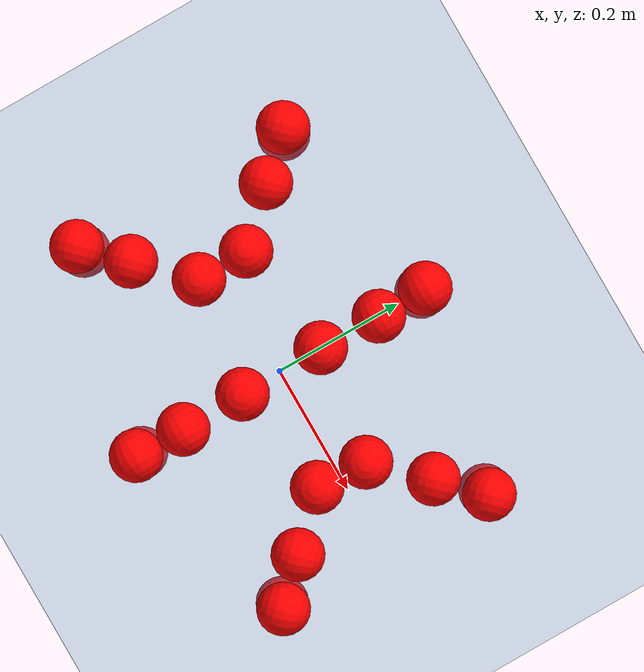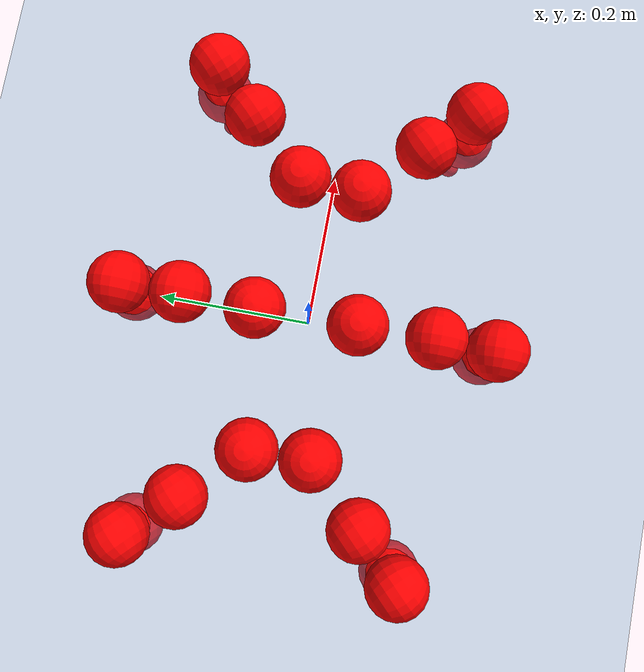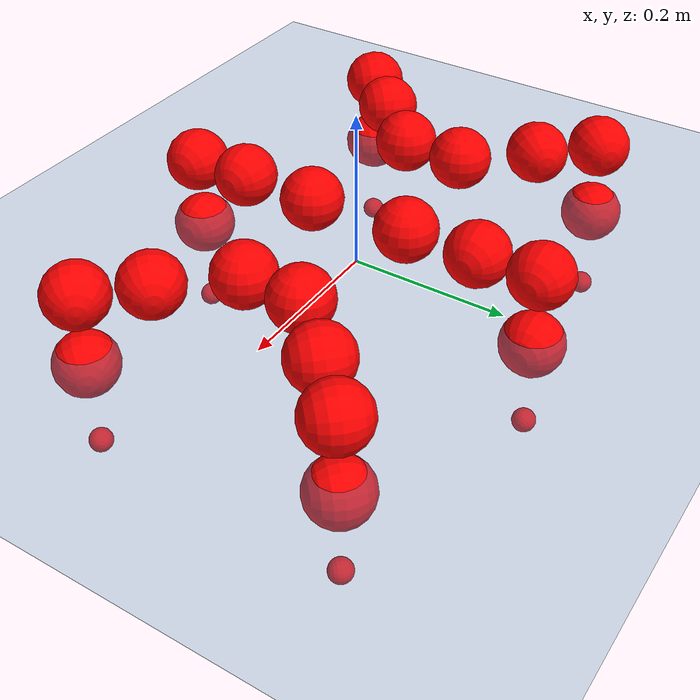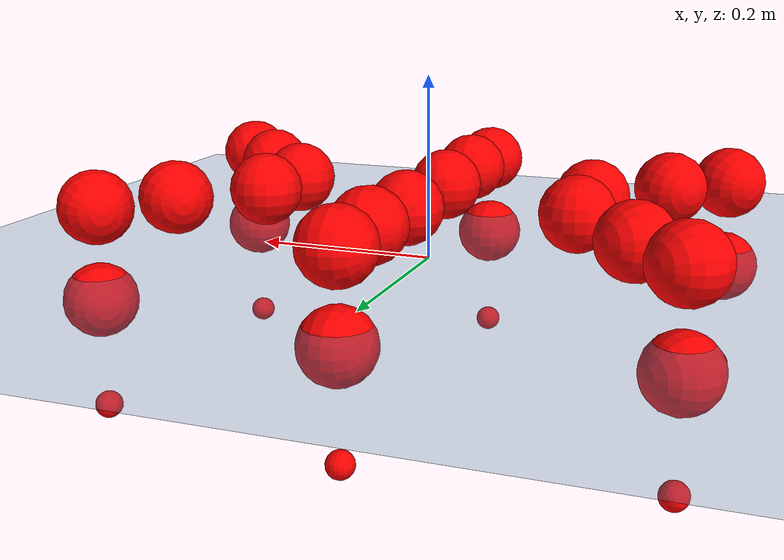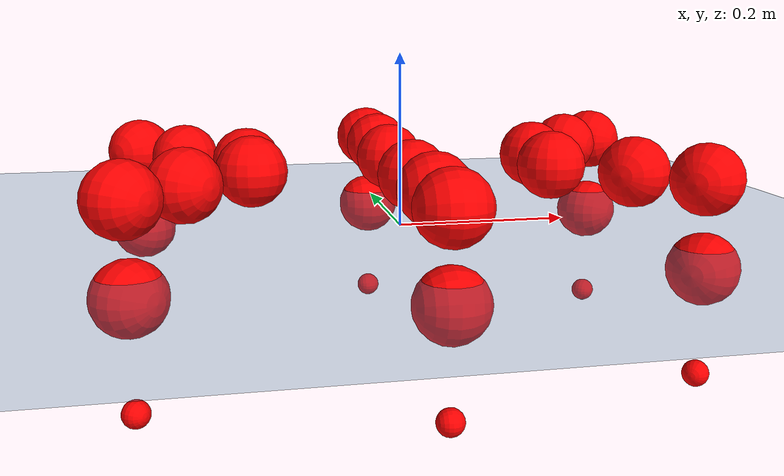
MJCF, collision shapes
<mujoco model="Golem">
  <compiler angle="radian" assetdir="assets" balanceinertia="true" inertiafromgeom="false"/>

  <option timestep="0.005" density="1.2" viscosity="2e-05"/>

  <size nkey="1"/>

  <visual>
    <quality shadowsize="8192"/>
    <map shadowclip="0.5"/>
  </visual>

  <default>
    <default class="/">
      <joint armature="0.01" damping="0.01" frictionloss="0.01"/>
      <geom contype="0" conaffinity="0" group="1" solref="-1000 -80"/>
      <site size="0.01 0.005 0.005" group="5"/>
      <general forcelimited="true" biastype="affine" gainprm="25" biasprm="0 -25 -0.5"/>
      <default class="visual">
        <geom type="mesh" group="2"/>
      </default>
      <default class="collision">
        <geom group="3"/>
      </default>
      <default class="foot">
        <geom size="0.01 0 0" condim="6" group="4" priority="1" solimp="0.015 1 0.01"/>
      </default>
      <default class="reward_collision_sphere">
        <geom group="5" rgba="1 0 0 1"/>
      </default>
    </default>
  </default>

  <asset>
    <texture type="skybox" colorspace="auto" name="//unnamed_texture_0" builtin="gradient" rgb1="0.95 0.95 0.95" rgb2="0.95 0.95 0.95" width="100" height="600"/>
    <texture type="2d" colorspace="auto" name="texplane" builtin="checker" rgb1="0.345 0.575 0.748" rgb2="0.345 0.575 0.748" markrgb="1 1 1" width="512" height="512"/>
    <material name="MatPlane" class="/" texture="texplane" texuniform="true" texrepeat="2 2" specular="0.9"/>
    <mesh name="body" class="/" file="body.stl" scale="0.001 0.001 0.001"/>
    <mesh name="coxa" class="/" file="coxa.stl" scale="0.001 0.001 0.001"/>
    <mesh name="femur" class="/" file="femur.stl" scale="0.001 0.001 0.001"/>
    <mesh name="tibia" class="/" file="tibia.stl" scale="0.001 0.001 0.001"/>
    <mesh name="tarsus" class="/" file="tarsus.stl" scale="0.001 0.001 0.001"/>
  </asset>

  <worldbody>
    <geom name="floor" class="/" size="100 100 0.125" type="plane" group="0" material="MatPlane"/>
    <light name="toplight_shadow" class="/" pos="0 0 5" dir="0.0990148 0.0990148 -0.990148" type="directional" ambient="0.04 0.04 0.04" diffuse="0.55 0.55 0.55" specular="0.12 0.12 0.12"/>
    <light name="toplight_fill" class="/" pos="0 0 5" dir="0.0990148 0.0990148 -0.990148" type="directional" castshadow="false" ambient="0.04 0.04 0.04" diffuse="0.3 0.3 0.3" specular="0.08 0.08 0.08"/>
    <body name="trunk" pos="0.000276767 0.00273648 0.00173209" quat="1 8.93115e-05 0.000241973 -9.75002e-05">
      <inertial pos="-0.000271927 0.000507844 -0.00471988" quat="0.999998 -0.000227874 0.0010873 0.00180613" mass="3.77148" diaginertia="0.0168067 0.00249245 0.0157875"/>
      <joint name="//unnamed_joint_0" type="free"/>
      <geom name="//unnamed_geom_1" class="/" pos="0 0 0.070119" quat="1 0 0 0" type="mesh" rgba="0.9 0.9 0.9 1" mesh="body"/>
      <site name="imu" class="/" pos="0.148073 -0.0100908 0.113408" size="0.00984785"/>
      <camera name="track" class="/" pos="0 -1.50324 0" quat="0.707107 0.707107 0 0" mode="trackcom"/>
      <camera name="ego_camera" class="/" pos="0.143926 0 0.109561" quat="-0.5 -0.5 0.5 0.5"/>
      <body name="coxa_RR" pos="-0.196353 -0.060402 0.0733152" quat="0.38267 0.000407244 -0.00119152 -0.923884">
        <inertial pos="0.000230535 -0.00262722 0.00306605" quat="0.99998 0.00561224 0.00303204 -5.61377e-05" mass="0.195837" diaginertia="0.0164203 0.00237595 0.015772"/>
        <joint name="coxa_joint_RR" class="/" pos="0 0 0" axis="0.000175718 -0.00408143 -0.999992" range="-3.0894 3.13811" armature="0.00993958" damping="0.00729787" frictionloss="0.0103553"/>
        <geom name="//unnamed_geom_2" class="/" type="mesh" rgba="0.2 0.2 0.2 1" mesh="coxa"/>
        <geom name="//unnamed_geom_3" class="reward_collision_sphere" size="0.0393914" pos="-0.0332137 0 0"/>
        <body name="femur_RR" pos="0.0681793 0.000333111 -0.000341352" quat="0.500541 -0.500661 0.499382 0.499415">
          <inertial pos="-0.00261791 -0.00084208 0.000769868" quat="1 0.000579242 0.000107998 -0.00051743" mass="0.194986" diaginertia="0.0170081 0.00246881 0.0162083"/>
          <joint name="femur_joint_RR" class="/" pos="0 0 0" axis="0.000178082 0.000447815 -1" stiffness="0.00631984" range="-3.18114 3.17149" armature="0.00868754" damping="0.00277876" frictionloss="0.00973834"/>
          <geom name="//unnamed_geom_4" class="/" type="mesh" rgba="0.9 0.9 0.9 1" mesh="femur"/>
          <geom name="//unnamed_geom_5" class="reward_collision_sphere" size="0.0393914"/>
          <body name="tibia_RR" pos="0.00145919 -0.0808586 -0.000485293" quat="7.91345e-06 1 3.08024e-05 3.28616e-05">
            <inertial pos="0.000950934 0.00107678 -0.000884924" quat="0.999973 0.00145478 -0.00376815 -0.00613683" mass="0.188112" diaginertia="0.0167937 0.00251588 0.0165631"/>
            <joint name="tibia_joint_RR" class="/" pos="0 0 0" axis="-0.00809453 0.00876256 0.999929" range="-3.15956 3.09132" armature="0.0104214" damping="0.0189035" frictionloss="0.0093281"/>
            <geom name="//unnamed_geom_6" class="/" type="mesh" rgba="0.2 0.2 0.2 1" mesh="tibia"/>
            <geom name="//unnamed_geom_7" class="reward_collision_sphere" size="0.0393914"/>
            <body name="tarsus_RR" pos="0.0970354 -0.0022544 -0.00084375" quat="1 -5.7595e-05 -0.000193682 -0.000361452">
              <inertial pos="0.0702809 0.00282558 -0.00272733" quat="0.496509 0.50056 0.499237 0.503667" mass="0.200102" diaginertia="0.0168207 0.00256213 0.0163149"/>
              <joint name="tarsus_joint_RR" class="/" pos="0 0 0" axis="0.00151774 0.00131836 0.999998" range="-3.08526 3.13583" armature="0.00983623" damping="0.0446387" frictionloss="0.010473"/>
              <geom name="//unnamed_geom_8" class="/" type="mesh" rgba="0.9 0.9 0.9 1" mesh="tarsus"/>
              <geom name="foot_1" class="foot" size="0.00993436" pos="0.123998 0 0" quat="0 -0.707107 0 0.707107"/>
              <geom name="//unnamed_geom_10" class="reward_collision_sphere" size="0.0393914"/>
              <geom name="//unnamed_geom_11" class="reward_collision_sphere" size="0.0147718" pos="0.119016 0 0"/>
              <site name="foot_1" class="foot" pos="0.123998 0 0" quat="0 -0.707107 0 0.707107" size="0.00984785"/>
            </body>
          </body>
        </body>
      </body>
      <body name="coxa_RM" pos="0.00117076 -0.0984685 0.0685197" quat="0.707078 1.78101e-05 -1.72635e-05 -0.707135">
        <inertial pos="0.000871928 0.00117525 -0.000118679" quat="0.999998 0.000684574 0.00193487 0.000176189" mass="0.184447" diaginertia="0.0164668 0.00236885 0.0156371"/>
        <joint name="coxa_joint_RM" class="/" pos="0 0 0" axis="0.000766141 -0.00060032 -1" range="-3.11973 3.14894" armature="0.00976635" damping="0.00893685" frictionloss="0.00861427"/>
        <geom name="//unnamed_geom_12" class="/" type="mesh" rgba="0.2 0.2 0.2 1" mesh="coxa"/>
        <geom name="//unnamed_geom_13" class="reward_collision_sphere" size="0.0393914" pos="-0.0332137 0 0"/>
        <body name="femur_RM" pos="0.0657904 0.00125418 0.00150866" quat="0.499828 -0.50014 0.499574 0.500457">
          <inertial pos="-0.000239069 -0.00182479 0.00249026" quat="0.999991 -0.000793228 -0.00414824 0.000457338" mass="0.193745" diaginertia="0.0162119 0.00242601 0.0159427"/>
          <joint name="femur_joint_RM" class="/" pos="0 0 0" axis="0.00460715 -0.00191948 -0.999988" range="-3.15566 3.11328" armature="0.0102482" damping="0" frictionloss="0.0096952"/>
          <geom name="//unnamed_geom_14" class="/" type="mesh" rgba="0.9 0.9 0.9 1" mesh="femur"/>
          <geom name="//unnamed_geom_15" class="reward_collision_sphere" size="0.0393914"/>
          <body name="tibia_RM" pos="0.00275945 -0.0778324 -0.00123503" quat="8.83703e-05 1 0.000113091 9.27901e-05">
            <inertial pos="-0.00266014 -0.00274879 1.78335e-05" quat="0.999915 0.0123154 0.0024938 -0.00353982" mass="0.192999" diaginertia="0.0166281 0.00241158 0.0153254"/>
            <joint name="tibia_joint_RM" class="/" pos="0 0 0" axis="0.00253787 0.00316022 0.999992" range="-3.13816 3.15981" armature="0.0104646" damping="0.0234762" frictionloss="0.0106579"/>
            <geom name="//unnamed_geom_16" class="/" type="mesh" rgba="0.2 0.2 0.2 1" mesh="tibia"/>
            <geom name="//unnamed_geom_17" class="reward_collision_sphere" size="0.0393914"/>
            <body name="tarsus_RM" pos="0.0950731 -0.00186741 -8.56276e-05" quat="1 -3.94444e-05 -0.000280571 -0.000118135">
              <inertial pos="0.066509 -0.000560636 0.00121366" quat="0.498265 0.500404 0.498755 0.502565" mass="0.195824" diaginertia="0.0171468 0.00249368 0.0162438"/>
              <joint name="tarsus_joint_RM" class="/" pos="0 0 0" axis="-0.000865661 0.00301918 0.999995" range="-3.14158 3.12835" armature="0.00836393" damping="0.00124546" frictionloss="0.00944095"/>
              <geom name="//unnamed_geom_18" class="/" type="mesh" rgba="0.9 0.9 0.9 1" mesh="tarsus"/>
              <geom name="foot_2" class="foot" size="0.00901495" pos="0.123998 0 0" quat="0 -0.707107 0 0.707107"/>
              <geom name="//unnamed_geom_20" class="reward_collision_sphere" size="0.0393914"/>
              <geom name="//unnamed_geom_21" class="reward_collision_sphere" size="0.0147718" pos="0.119016 0 0"/>
              <site name="foot_2" class="foot" pos="0.123998 0 0" quat="0 -0.707107 0 0.707107" size="0.00984785"/>
            </body>
          </body>
        </body>
      </body>
      <body name="coxa_RF" pos="0.194144 -0.0625068 0.0701302" quat="0.92388 -5.42044e-06 5.79516e-06 -0.382682">
        <inertial pos="0.00285974 -6.41598e-05 -0.000122983" quat="0.999988 -0.000465891 -0.0037551 0.00301765" mass="0.189191" diaginertia="0.0171353 0.00236074 0.0151964"/>
        <joint name="coxa_joint_RF" class="/" pos="0 0 0" axis="0.00706331 0.00208178 -0.999973" range="-3.17559 3.1562" armature="0.00927353" damping="0.0110796" frictionloss="0.0101251"/>
        <geom name="//unnamed_geom_22" class="/" type="mesh" rgba="0.2 0.2 0.2 1" mesh="coxa"/>
        <geom name="//unnamed_geom_23" class="reward_collision_sphere" size="0.0393914" pos="-0.0332137 0 0"/>
        <body name="femur_RF" pos="0.0674729 -0.0015641 0.00134273" quat="0.500112 -0.499641 0.500523 0.499723">
          <inertial pos="0.000615829 0.000943032 -0.00240434" quat="0.999996 0.0019413 -0.00141994 -0.0013962" mass="0.187836" diaginertia="0.0166866 0.00250309 0.0157704"/>
          <joint name="femur_joint_RF" class="/" pos="0 0 0" axis="8.59948e-05 -4.21752e-05 -1" range="-3.08558 3.13334" armature="0.0109482" damping="0" frictionloss="0.00989552"/>
          <geom name="//unnamed_geom_24" class="/" type="mesh" rgba="0.9 0.9 0.9 1" mesh="femur"/>
          <geom name="//unnamed_geom_25" class="reward_collision_sphere" size="0.0393914"/>
          <body name="tibia_RF" pos="0.000687668 -0.0806166 0.000338727" quat="-0.000111568 1 -7.86158e-05 8.97124e-05">
            <inertial pos="-0.000103622 0.0022834 0.000478492" quat="0.999997 -0.00148236 0.00210949 0.000449251" mass="0.190299" diaginertia="0.0171575 0.00235027 0.0162973"/>
            <joint name="tibia_joint_RF" class="/" pos="0 0 0" axis="0.00417019 -0.00246866 0.999988" range="-3.1539 3.15819" armature="0.010113" damping="0.00546466" frictionloss="0.00857155"/>
            <geom name="//unnamed_geom_26" class="/" type="mesh" rgba="0.2 0.2 0.2 1" mesh="tibia"/>
            <geom name="//unnamed_geom_27" class="reward_collision_sphere" size="0.0393914"/>
            <body name="tarsus_RF" pos="0.0971046 0.0016582 0.00141946" quat="0.999999 -0.000263265 -0.000405159 -0.00129504">
              <inertial pos="0.0645865 -0.00269401 0.000846046" quat="0.495062 0.497999 0.496163 0.51062" mass="0.185056" diaginertia="0.0172185 0.00232471 0.0157587"/>
              <joint name="tarsus_joint_RF" class="/" pos="0 0 0" axis="0.0123125 0.0021609 0.999922" stiffness="0.00182724" range="-3.08624 3.15324" armature="0.0109213" damping="0.00240433" frictionloss="0.00973617"/>
              <geom name="//unnamed_geom_28" class="/" type="mesh" rgba="0.9 0.9 0.9 1" mesh="tarsus"/>
              <geom name="foot_3" class="foot" size="0.00991492" pos="0.123998 0 0" quat="0 -0.707107 0 0.707107"/>
              <geom name="//unnamed_geom_30" class="reward_collision_sphere" size="0.0393914"/>
              <geom name="//unnamed_geom_31" class="reward_collision_sphere" size="0.0147718" pos="0.119016 0 0"/>
              <site name="foot_3" class="foot" pos="0.123998 0 0" quat="0 -0.707107 0 0.707107" size="0.00984785"/>
            </body>
          </body>
        </body>
      </body>
      <body name="coxa_LR" pos="-0.197773 0.0652845 0.0718754" quat="0.382854 7.81437e-06 8.00249e-05 0.923809">
        <inertial pos="0.00060099 -0.00287226 0.000270906" quat="0.999917 0.00122884 -0.00555701 -0.0115405" mass="0.183694" diaginertia="0.0158711 0.00239817 0.0153577"/>
        <joint name="coxa_joint_LR" class="/" pos="0 0 0" axis="0.00606477 -0.00708577 -0.999957" range="-3.15474 3.19221" armature="0.00849876" damping="0.00714405" frictionloss="0.0103667"/>
        <geom name="//unnamed_geom_32" class="/" type="mesh" rgba="0.2 0.2 0.2 1" mesh="coxa"/>
        <geom name="//unnamed_geom_33" class="reward_collision_sphere" size="0.0393914" pos="-0.0332137 0 0"/>
        <body name="femur_LR" pos="0.0692475 -0.00185459 -0.0033573" quat="0.499374 -0.500253 0.500864 0.499508">
          <inertial pos="-0.000127706 -0.000315721 -0.00116984" quat="0.999909 -0.0100645 -0.000594142 -0.00894281" mass="0.189444" diaginertia="0.0168327 0.00243266 0.016486"/>
          <joint name="femur_joint_LR" class="/" pos="0 0 0" axis="0.00390161 0.00580683 0.999976" range="-3.08944 3.08728" armature="0.010581" damping="0" frictionloss="0.0102675"/>
          <geom name="//unnamed_geom_34" class="/" type="mesh" rgba="0.9 0.9 0.9 1" mesh="femur"/>
          <geom name="//unnamed_geom_35" class="reward_collision_sphere" size="0.0393914"/>
          <body name="tibia_LR" pos="-0.000711374 -0.0832236 -0.0032103" quat="-0.000107822 1 -0.000446748 0.000505214">
            <inertial pos="0.000917284 -0.00231213 0.00247857" quat="0.999964 -0.00400158 -0.00267686 0.00701618" mass="0.192592" diaginertia="0.017179 0.00243884 0.0158223"/>
            <joint name="tibia_joint_LR" class="/" pos="0 0 0" axis="0.00232138 0.000954031 -0.999997" range="-3.19206 3.16905" armature="0.00910185" damping="0" frictionloss="0.0107662"/>
            <geom name="//unnamed_geom_36" class="/" type="mesh" rgba="0.2 0.2 0.2 1" mesh="tibia"/>
            <geom name="//unnamed_geom_37" class="reward_collision_sphere" size="0.0393914"/>
            <body name="tarsus_LR" pos="0.0999637 0.000646092 0.000585418" quat="0.999999 0.0012179 -0.000182123 0.00052879">
              <inertial pos="0.0700222 0.000909575 -0.000202194" quat="0.507532 0.495282 0.50148 0.495607" mass="0.196817" diaginertia="0.0166908 0.0024257 0.015874"/>
              <joint name="tarsus_joint_LR" class="/" pos="0 0 0" axis="0.0054724 0.00237859 -0.999982" range="-3.19378 3.14636" armature="0.00996206" damping="0.0258269" frictionloss="0.00849978"/>
              <geom name="//unnamed_geom_38" class="/" type="mesh" rgba="0.9 0.9 0.9 1" mesh="tarsus"/>
              <geom name="foot_4" class="foot" size="0.0100196" pos="0.123998 0 0" quat="0.707107 0 -0.707107 0"/>
              <geom name="//unnamed_geom_40" class="reward_collision_sphere" size="0.0393914"/>
              <geom name="//unnamed_geom_41" class="reward_collision_sphere" size="0.0147718" pos="0.119016 0 0"/>
              <site name="foot_4" class="foot" pos="0.123998 0 0" quat="0.707107 0 -0.707107 0" size="0.00984785"/>
            </body>
          </body>
        </body>
      </body>
      <body name="coxa_LM" pos="-0.000574494 0.0987043 0.0697632" quat="0.706795 0.000170655 0.000257801 0.707418">
        <inertial pos="-0.00223326 0.000414606 -0.00207307" quat="0.999999 -0.000412177 -0.000922719 -0.000883937" mass="0.187531" diaginertia="0.0159442 0.00229961 0.0161916"/>
        <joint name="coxa_joint_LM" class="/" pos="0 0 0" axis="-0.00526205 0.00149661 -0.999985" range="-3.13987 3.14531" armature="0.0112022" damping="0.00178751" frictionloss="0.00886692"/>
        <geom name="//unnamed_geom_42" class="/" type="mesh" rgba="0.2 0.2 0.2 1" mesh="coxa"/>
        <geom name="//unnamed_geom_43" class="reward_collision_sphere" size="0.0393914" pos="-0.0332137 0 0"/>
        <body name="femur_LM" pos="0.06177 -0.00237355 0.00309513" quat="0.500289 -0.500179 0.499451 0.50008">
          <inertial pos="0.00268338 0.000870089 0.00263899" quat="0.999996 -0.00255542 0.000456365 0.00079559" mass="0.191289" diaginertia="0.0168251 0.00241134 0.0157381"/>
          <joint name="femur_joint_LM" class="/" pos="0 0 0" axis="0.000299246 0.00264041 0.999996" range="-3.15818 3.08876" armature="0.0102723" damping="0" frictionloss="0.0108957"/>
          <geom name="//unnamed_geom_44" class="/" type="mesh" rgba="0.9 0.9 0.9 1" mesh="femur"/>
          <geom name="//unnamed_geom_45" class="reward_collision_sphere" size="0.0393914"/>
          <body name="tibia_LM" pos="0.000286918 -0.0779414 0.00155796" quat="0.000178923 1 -0.000147698 -0.000105171">
            <inertial pos="-0.0014311 -0.00270131 0.00258214" quat="0.999922 -0.00621247 -0.010693 0.00147213" mass="0.186411" diaginertia="0.0166512 0.00236261 0.0153151"/>
            <joint name="tibia_joint_LM" class="/" pos="0 0 0" axis="0.0104939 -0.00532426 -0.999931" range="-3.14785 3.084" armature="0.00980006" damping="0" frictionloss="0.00995273"/>
            <geom name="//unnamed_geom_46" class="/" type="mesh" rgba="0.2 0.2 0.2 1" mesh="tibia"/>
            <geom name="//unnamed_geom_47" class="reward_collision_sphere" size="0.0393914"/>
            <body name="tarsus_LM" pos="0.0955892 -0.00166356 0.0021539" quat="1 -4.50787e-05 9.74057e-07 -9.91078e-06">
              <inertial pos="0.0647951 0.0008557 -0.00270156" quat="0.491851 0.503024 0.509179 0.495768" mass="0.196153" diaginertia="0.0167327 0.00230631 0.0152436"/>
              <joint name="tarsus_joint_LM" class="/" pos="0 0 0" axis="0.00979857 0.0072661 -0.999926" range="-3.13987 3.08392" armature="0.00963157" damping="0.00631322" frictionloss="0.00992689"/>
              <geom name="//unnamed_geom_48" class="/" type="mesh" rgba="0.9 0.9 0.9 1" mesh="tarsus"/>
              <geom name="foot_5" class="foot" size="0.0101095" pos="0.123998 0 0" quat="0.707107 0 -0.707107 0"/>
              <geom name="//unnamed_geom_50" class="reward_collision_sphere" size="0.0393914"/>
              <geom name="//unnamed_geom_51" class="reward_collision_sphere" size="0.0147718" pos="0.119016 0 0"/>
              <site name="foot_5" class="foot" pos="0.123998 0 0" quat="0.707107 0 -0.707107 0" size="0.00984785"/>
            </body>
          </body>
        </body>
      </body>
      <body name="coxa_LF" pos="0.197804 0.0632596 0.0716942" quat="0.923709 0.000707286 -0.00101139 0.383094">
        <inertial pos="-0.000299108 0.000943724 0.000411698" quat="0.999922 0.00572258 -0.00115047 0.0110547" mass="0.194787" diaginertia="0.0162282 0.00244767 0.0150739"/>
        <joint name="coxa_joint_LF" class="/" pos="0 0 0" axis="0.00628961 -0.000108884 -0.99998" range="-3.1402 3.13473" armature="0.00969883" damping="0.00482664" frictionloss="0.00931908"/>
        <geom name="//unnamed_geom_52" class="/" type="mesh" rgba="0.2 0.2 0.2 1" mesh="coxa"/>
        <geom name="//unnamed_geom_53" class="reward_collision_sphere" size="0.0393914" pos="-0.0332137 0 0"/>
        <body name="femur_LF" pos="0.0667468 0.00185161 0.000440144" quat="0.50022 -0.500049 0.500133 0.499599">
          <inertial pos="0.002764 -0.000143478 0.0026569" quat="1 -0.000348719 0.000124556 7.34156e-05" mass="0.186854" diaginertia="0.0159829 0.00239515 0.0151914"/>
          <joint name="femur_joint_LF" class="/" pos="0 0 0" axis="0.00639118 0.00138704 0.999979" range="-3.13504 3.18807" armature="0.0110536" damping="0.00112231" frictionloss="0.00992993"/>
          <geom name="//unnamed_geom_54" class="/" type="mesh" rgba="0.9 0.9 0.9 1" mesh="femur"/>
          <geom name="//unnamed_geom_55" class="reward_collision_sphere" size="0.0393914"/>
          <body name="tibia_LF" pos="0.00325103 -0.0835489 -0.000727176" quat="-0.000152674 0.999999 -0.000618084 -0.000885938">
            <inertial pos="0.00081642 -0.000522188 0.000325098" quat="0.999996 -0.00235024 -0.00136229 -0.000461191" mass="0.191104" diaginertia="0.0165485 0.00240741 0.0157212"/>
            <joint name="tibia_joint_LF" class="/" pos="0 0 0" axis="-0.0108629 -0.00256082 -0.999938" range="-3.14413 3.18288" armature="0.00848711" damping="0.0072083" frictionloss="0.00965345"/>
            <geom name="//unnamed_geom_56" class="/" type="mesh" rgba="0.2 0.2 0.2 1" mesh="tibia"/>
            <geom name="//unnamed_geom_57" class="reward_collision_sphere" size="0.0393914"/>
            <body name="tarsus_LF" pos="0.0994161 0.00169191 -0.0016438" quat="1 -3.18279e-05 0.000159879 0.000175629">
              <inertial pos="0.0642894 0.000612323 -0.00069995" quat="0.498978 0.500049 0.499757 0.501214" mass="0.187238" diaginertia="0.0166106 0.00238255 0.0159838"/>
              <joint name="tarsus_joint_LF" class="/" pos="0 0 0" axis="0.00204544 -0.00728487 -0.999971" stiffness="0.0218964" range="-3.19329 3.19234" armature="0.00996444" damping="0" frictionloss="0.00986072"/>
              <geom name="//unnamed_geom_58" class="/" type="mesh" rgba="0.9 0.9 0.9 1" mesh="tarsus"/>
              <geom name="foot_6" class="foot" size="0.0101692" pos="0.123998 0 0" quat="0.707107 0 -0.707107 0"/>
              <geom name="//unnamed_geom_60" class="reward_collision_sphere" size="0.0393914"/>
              <geom name="//unnamed_geom_61" class="reward_collision_sphere" size="0.0147718" pos="0.119016 0 0"/>
              <site name="foot_6" class="foot" pos="0.123998 0 0" quat="0.707107 0 -0.707107 0" size="0.00984785"/>
            </body>
          </body>
        </body>
      </body>
    </body>
  </worldbody>

  <contact>
    <pair class="/" geom1="floor" geom2="foot_1" name="//unnamed_contact_0"/>
    <pair class="/" geom1="floor" geom2="foot_2" name="//unnamed_contact_1"/>
    <pair class="/" geom1="floor" geom2="foot_3" name="//unnamed_contact_2"/>
    <pair class="/" geom1="floor" geom2="foot_4" name="//unnamed_contact_3"/>
    <pair class="/" geom1="floor" geom2="foot_5" name="//unnamed_contact_4"/>
    <pair class="/" geom1="floor" geom2="foot_6" name="//unnamed_contact_5"/>
  </contact>

  <actuator>
    <general name="coxa_joint_RR" class="/" joint="coxa_joint_RR" forcerange="-7.32985 7.32985" gainprm="23.5272" biasprm="0 -23.5272 -0.541013"/>
    <general name="femur_joint_RR" class="/" joint="femur_joint_RR" forcerange="-6.87302 6.87302" gainprm="23.5272" biasprm="0 -23.5272 -0.541013"/>
    <general name="tibia_joint_RR" class="/" joint="tibia_joint_RR" forcerange="-6.47496 6.47496" gainprm="23.5272" biasprm="0 -23.5272 -0.541013"/>
    <general name="tarsus_joint_RR" class="/" joint="tarsus_joint_RR" forcerange="-6.65904 6.65904" gainprm="23.5272" biasprm="0 -23.5272 -0.541013"/>
    <general name="coxa_joint_RM" class="/" joint="coxa_joint_RM" forcerange="-7.16742 7.16742" gainprm="23.5272" biasprm="0 -23.5272 -0.541013"/>
    <general name="femur_joint_RM" class="/" joint="femur_joint_RM" forcerange="-7.23566 7.23566" gainprm="23.5272" biasprm="0 -23.5272 -0.541013"/>
    <general name="tibia_joint_RM" class="/" joint="tibia_joint_RM" forcerange="-6.51676 6.51676" gainprm="23.5272" biasprm="0 -23.5272 -0.541013"/>
    <general name="tarsus_joint_RM" class="/" joint="tarsus_joint_RM" forcerange="-7.3246 7.3246" gainprm="23.5272" biasprm="0 -23.5272 -0.541013"/>
    <general name="coxa_joint_RF" class="/" joint="coxa_joint_RF" forcerange="-7.17848 7.17848" gainprm="23.5272" biasprm="0 -23.5272 -0.541013"/>
    <general name="femur_joint_RF" class="/" joint="femur_joint_RF" forcerange="-7.86095 7.86095" gainprm="23.5272" biasprm="0 -23.5272 -0.541013"/>
    <general name="tibia_joint_RF" class="/" joint="tibia_joint_RF" forcerange="-7.50482 7.50482" gainprm="23.5272" biasprm="0 -23.5272 -0.541013"/>
    <general name="tarsus_joint_RF" class="/" joint="tarsus_joint_RF" forcerange="-7.86539 7.86539" gainprm="23.5272" biasprm="0 -23.5272 -0.541013"/>
    <general name="coxa_joint_LR" class="/" joint="coxa_joint_LR" forcerange="-6.47201 6.47201" gainprm="23.5272" biasprm="0 -23.5272 -0.541013"/>
    <general name="femur_joint_LR" class="/" joint="femur_joint_LR" forcerange="-7.2325 7.2325" gainprm="23.5272" biasprm="0 -23.5272 -0.541013"/>
    <general name="tibia_joint_LR" class="/" joint="tibia_joint_LR" forcerange="-7.64684 7.64684" gainprm="23.5272" biasprm="0 -23.5272 -0.541013"/>
    <general name="tarsus_joint_LR" class="/" joint="tarsus_joint_LR" forcerange="-7.13566 7.13566" gainprm="23.5272" biasprm="0 -23.5272 -0.541013"/>
    <general name="coxa_joint_LM" class="/" joint="coxa_joint_LM" forcerange="-7.45393 7.45393" gainprm="23.5272" biasprm="0 -23.5272 -0.541013"/>
    <general name="femur_joint_LM" class="/" joint="femur_joint_LM" forcerange="-7.17185 7.17185" gainprm="23.5272" biasprm="0 -23.5272 -0.541013"/>
    <general name="tibia_joint_LM" class="/" joint="tibia_joint_LM" forcerange="-6.45776 6.45776" gainprm="23.5272" biasprm="0 -23.5272 -0.541013"/>
    <general name="tarsus_joint_LM" class="/" joint="tarsus_joint_LM" forcerange="-6.57771 6.57771" gainprm="23.5272" biasprm="0 -23.5272 -0.541013"/>
    <general name="coxa_joint_LF" class="/" joint="coxa_joint_LF" forcerange="-7.17105 7.17105" gainprm="23.5272" biasprm="0 -23.5272 -0.541013"/>
    <general name="femur_joint_LF" class="/" joint="femur_joint_LF" forcerange="-6.45972 6.45972" gainprm="23.5272" biasprm="0 -23.5272 -0.541013"/>
    <general name="tibia_joint_LF" class="/" joint="tibia_joint_LF" forcerange="-7.3396 7.3396" gainprm="23.5272" biasprm="0 -23.5272 -0.541013"/>
    <general name="tarsus_joint_LF" class="/" joint="tarsus_joint_LF" forcerange="-7.19519 7.19519" gainprm="23.5272" biasprm="0 -23.5272 -0.541013"/>
  </actuator>

  <sensor>
    <gyro site="imu" name="imu_angular_velocity"/>
    <velocimeter site="imu" name="imu_linear_velocity"/>
    <framelinvel objtype="site" objname="foot_1" name="foot_1_global_linear_velocity"/>
    <framelinvel objtype="site" objname="foot_2" name="foot_2_global_linear_velocity"/>
    <framelinvel objtype="site" objname="foot_3" name="foot_3_global_linear_velocity"/>
    <framelinvel objtype="site" objname="foot_4" name="foot_4_global_linear_velocity"/>
    <framelinvel objtype="site" objname="foot_5" name="foot_5_global_linear_velocity"/>
    <framelinvel objtype="site" objname="foot_6" name="foot_6_global_linear_velocity"/>
  </sensor>

  <keyframe>
    <key name="home" qpos="0 0 0.1457 1 0 0 0 0 0 0 0 0 0 0 0 0 0 0 0 0 0 0 0 0 0 0 0 0 0 0 0"/>
  </keyframe>
</mujoco>
